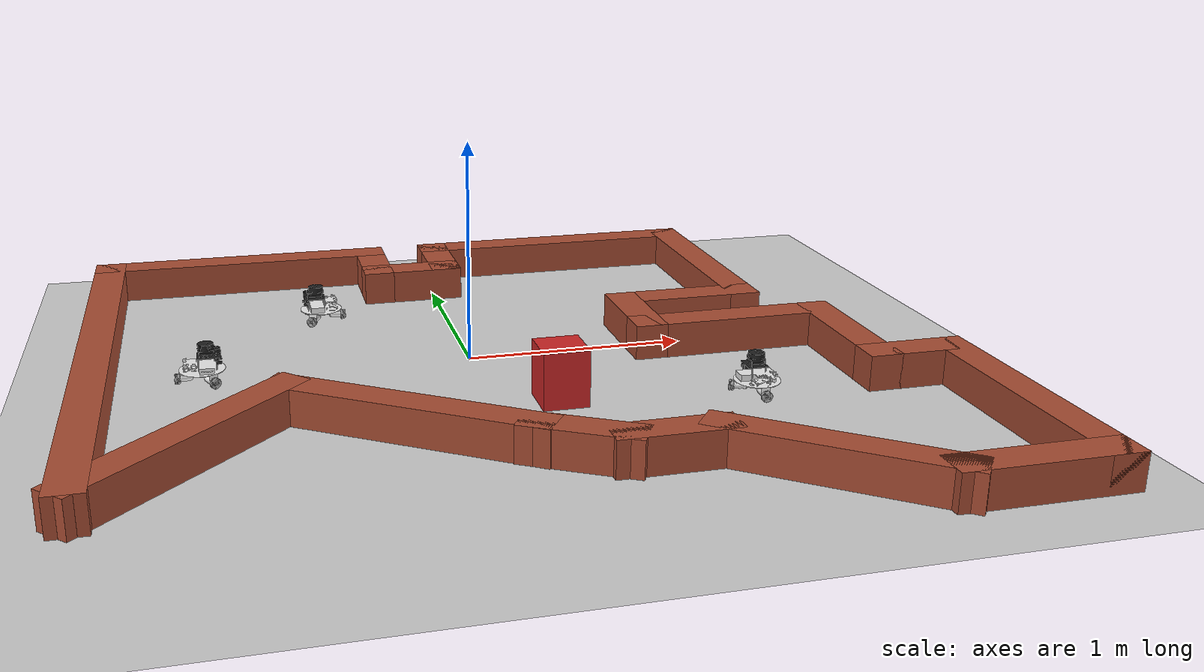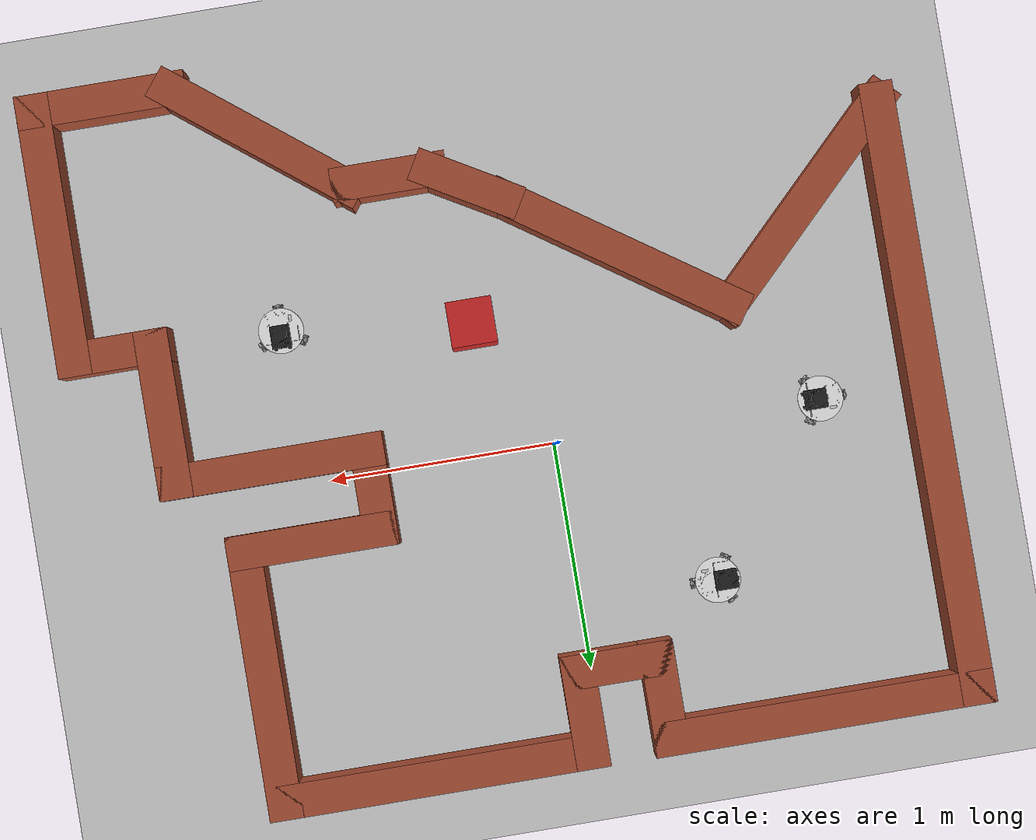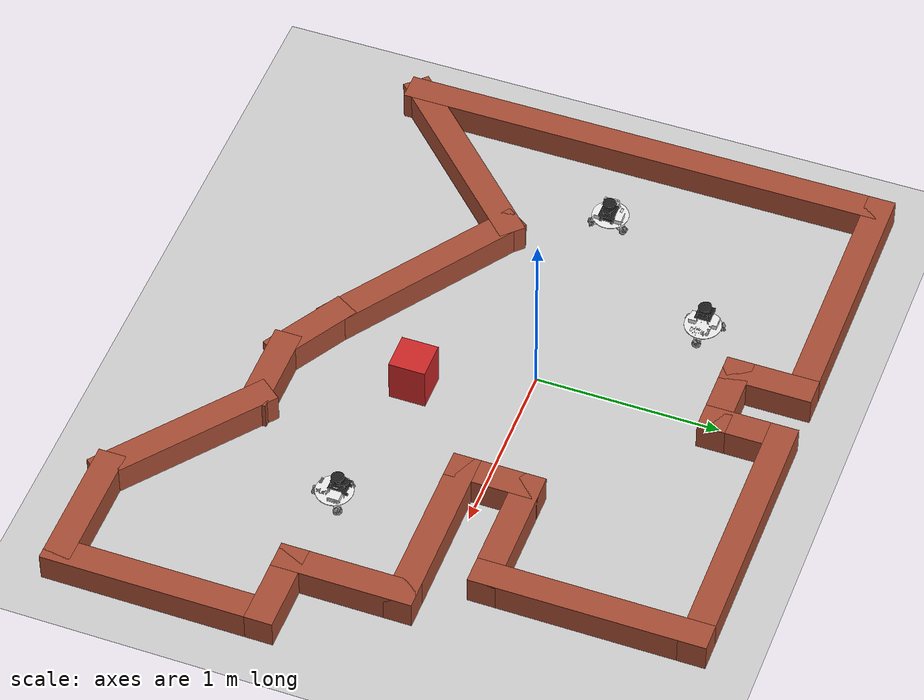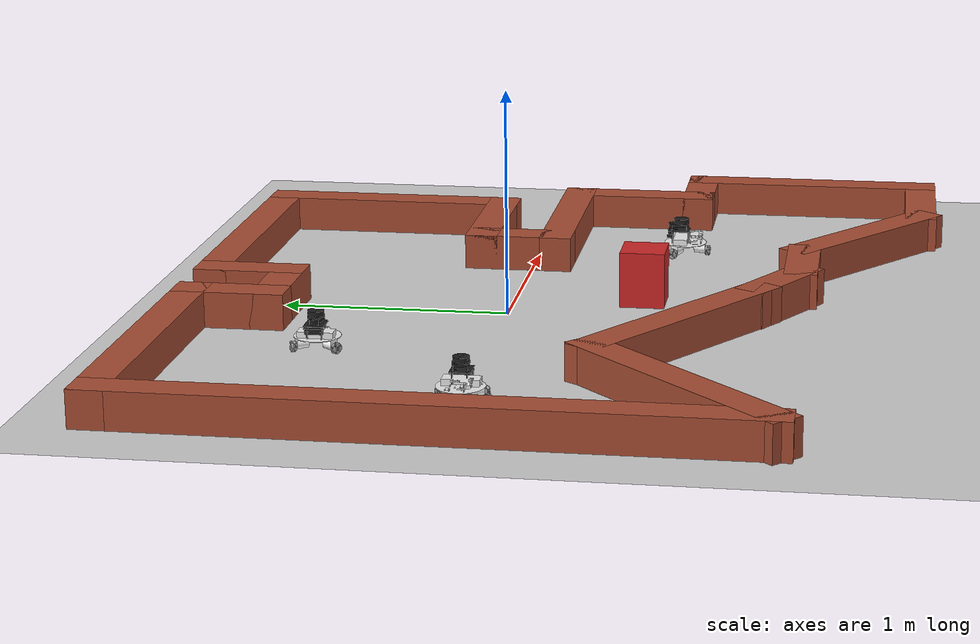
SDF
<sdf version="1.7">
 <world name="default">
  <light name="sun" type="directional">
   <pose>0 0 10 0 -0 0</pose>
   <diffuse>0.8 0.8 0.8 1</diffuse>
   <specular>0.2 0.2 0.2 1</specular>
   <attenuation>
    <range>1000</range>
    <constant>0.9</constant>
    <linear>0.01</linear>
    <quadratic>0.001</quadratic>
   </attenuation>
   <direction>-0.5 0.1 -0.9</direction>
   <spot><inner_angle>0</inner_angle><outer_angle>0</outer_angle><falloff>0</falloff></spot>
  </light>
  <model name="ground_plane">
   <static>1</static>
   <link name="link">
    <collision name="collision">
     <geometry><plane><normal>0 0 1</normal><size>100 100</size></plane></geometry>
     <surface>
      <contact><collide_bitmask>65535</collide_bitmask></contact>
      <friction><ode><mu>100</mu><mu2>50</mu2></ode></friction>
     </surface>
    </collision>
    <visual name="visual">
     <cast_shadows>0</cast_shadows>
     <geometry><plane><normal>0 0 1</normal><size>50 50</size></plane></geometry>
     <material>
      <script><uri>file://media/materials/scripts/gazebo.material</uri><name>Gazebo/Grey</name></script>
     </material>
    </visual>
   </link>
  </model>
  <gravity>0 0 -9.8</gravity>
  <magnetic_field>6e-06 2.3e-05 -4.2e-05</magnetic_field>
  <atmosphere type="adiabatic"/>
  <physics type="ode">
   <max_step_size>0.001</max_step_size>
   <real_time_factor>1</real_time_factor>
   <real_time_update_rate>1000</real_time_update_rate>
  </physics>
  <scene><ambient>0.4 0.4 0.4 1</ambient><background>0.7 0.7 0.7 1</background><shadows>1</shadows></scene>
  <spherical_coordinates>
   <surface_model>EARTH_WGS84</surface_model>
   <latitude_deg>0</latitude_deg>
   <longitude_deg>0</longitude_deg>
   <elevation>0</elevation>
   <heading_deg>0</heading_deg>
  </spherical_coordinates>
  <model name="box">
   <link name="link_1">
    <inertial>
     <mass>100</mass>
     <inertia>
      <ixx>0.166667</ixx>
      <ixy>0</ixy>
      <ixz>0</ixz>
      <iyy>0.166667</iyy>
      <iyz>0</iyz>
      <izz>0.166667</izz>
     </inertia>
    </inertial>
    <pose>0.1 -0.33 0.15 0 -0 0</pose>
    <visual name="visual">
     <geometry><box><size>0.2 0.2 0.25</size></box></geometry>
     <material>
      <lighting>1</lighting>
      <script><uri>file://media/materials/scripts/gazebo.material</uri><name>Gazebo/Red</name></script>
      <shader type="pixel"><normal_map>__default__</normal_map></shader>
      <ambient>0.3 0.3 0.3 1</ambient>
      <diffuse>1 0 0 1</diffuse>
      <specular>0.01 0.01 0.01 1</specular>
      <emissive>0 0 0 1</emissive>
     </material>
    </visual>
    <collision name="collision">
     <geometry><box><size>0.2 0.2 0.25</size></box></geometry>
     <surface>
      <friction>
       <ode><mu>1</mu><mu2>1</mu2><fdir1>0 0 0</fdir1><slip1>0</slip1><slip2>0</slip2></ode>
       <torsional>
        <coefficient>1</coefficient>
        <patch_radius>0</patch_radius>
        <surface_radius>0</surface_radius>
        <use_patch_radius>1</use_patch_radius>
        <ode><slip>0</slip></ode>
       </torsional>
      </friction>
      <bounce><restitution_coefficient>0</restitution_coefficient><threshold>1e+06</threshold></bounce>
      <contact>
       <collide_without_contact>0</collide_without_contact>
       <collide_without_contact_bitmask>1</collide_without_contact_bitmask>
       <collide_bitmask>1</collide_bitmask>
       <ode>
        <soft_cfm>0</soft_cfm>
        <soft_erp>0.2</soft_erp>
        <kp>1e+13</kp>
        <kd>1</kd>
        <max_vel>0.01</max_vel>
        <min_depth>0</min_depth>
       </ode>
       <bullet>
        <split_impulse>1</split_impulse>
        <split_impulse_penetration_threshold>-0.01</split_impulse_penetration_threshold>
        <soft_cfm>0</soft_cfm>
        <soft_erp>0.2</soft_erp>
        <kp>1e+13</kp>
        <kd>1</kd>
       </bullet>
      </contact>
     </surface>
    </collision>
   </link>
   <model name="MAP_WORLD">
    <link name="Wall_21">
     <collision name="Wall_21_Collision">
      <geometry><box><size>0.5 0.15 0.18</size></box></geometry>
      <pose>0 0 0.09 0 -0 0</pose>
     </collision>
     <visual name="Wall_21_Visual">
      <pose>0 0 0.09 0 -0 0</pose>
      <geometry><box><size>0.5 0.15 0.18</size></box></geometry>
      <material>
       <script><uri>file://media/materials/scripts/gazebo.material</uri><name>Gazebo/Bricks</name></script>
       <ambient>1 1 1 1</ambient>
      </material>
      <meta><layer>0</layer></meta>
     </visual>
     <pose>0.022087 -0.937359 0 0 -0 -0.523599</pose>
    </link>
    <link name="Wall_23">
     <collision name="Wall_23_Collision">
      <geometry><box><size>0.51 0.15 0.18</size></box></geometry>
      <pose>0 0 0.09 0 -0 0</pose>
     </collision>
     <visual name="Wall_23_Visual">
      <pose>0 0 0.09 0 -0 0</pose>
      <geometry><box><size>0.51 0.15 0.18</size></box></geometry>
      <material>
       <script><uri>file://media/materials/scripts/gazebo.material</uri><name>Gazebo/Bricks</name></script>
       <ambient>1 1 1 1</ambient>
      </material>
      <meta><layer>0</layer></meta>
     </visual>
     <pose>0.353642 -1.02486 0 0 -0 0</pose>
    </link>
    <link name="Wall_24">
     <collision name="Wall_24_Collision">
      <geometry><box><size>1.03469 0.15 0.18</size></box></geometry>
      <pose>0 0 0.09 0 -0 0</pose>
     </collision>
     <visual name="Wall_24_Visual">
      <pose>0 0 0.09 0 -0 0</pose>
      <geometry><box><size>1.03469 0.15 0.18</size></box></geometry>
      <material>
       <script><uri>file://media/materials/scripts/gazebo.material</uri><name>Gazebo/Bricks</name></script>
       <ambient>1 1 1 1</ambient>
      </material>
      <meta><layer>0</layer></meta>
     </visual>
     <pose>0.892087 -1.28736 0 0 -0 -0.663696</pose>
    </link>
    <link name="Wall_41">
     <collision name="Wall_41_Collision">
      <geometry><box><size>0.75 0.15 0.18</size></box></geometry>
      <pose>0 0 0.09 0 -0 0</pose>
     </collision>
     <visual name="Wall_41_Visual">
      <pose>0 0 0.09 0 -0 0</pose>
      <geometry><box><size>0.75 0.15 0.18</size></box></geometry>
      <material>
       <script><uri>file://media/materials/scripts/gazebo.material</uri><name>Gazebo/Bricks</name></script>
       <ambient>1 1 1 1</ambient>
      </material>
      <meta><layer>0</layer></meta>
     </visual>
     <pose>1.54053 -1.55986 0 0 -0 0</pose>
    </link>
    <link name="Wall_42">
     <collision name="Wall_42_Collision">
      <geometry><box><size>1.25 0.15 0.18</size></box></geometry>
      <pose>0 0 0.09 0 -0 0</pose>
     </collision>
     <visual name="Wall_42_Visual">
      <pose>0 0 0.09 0 -0 0</pose>
      <geometry><box><size>1.25 0.15 0.18</size></box></geometry>
      <material>
       <script><uri>file://media/materials/scripts/gazebo.material</uri><name>Gazebo/Bricks</name></script>
       <ambient>1 1 1 1</ambient>
      </material>
      <meta><layer>0</layer></meta>
     </visual>
     <pose>1.84053 -1.00986 0 0 -0 1.5708</pose>
    </link>
    <link name="Wall_43">
     <collision name="Wall_43_Collision">
      <geometry><box><size>0.5 0.15 0.18</size></box></geometry>
      <pose>0 0 0.09 0 -0 0</pose>
     </collision>
     <visual name="Wall_43_Visual">
      <pose>0 0 0.09 0 -0 0</pose>
      <geometry><box><size>0.5 0.15 0.18</size></box></geometry>
      <material>
       <script><uri>file://media/materials/scripts/gazebo.material</uri><name>Gazebo/Bricks</name></script>
       <ambient>1 1 1 1</ambient>
      </material>
      <meta><layer>0</layer></meta>
     </visual>
     <pose>1.66553 -0.459859 0 0 -0 3.14159</pose>
    </link>
    <link name="Wall_44">
     <collision name="Wall_44_Collision">
      <geometry><box><size>0.75 0.15 0.18</size></box></geometry>
      <pose>0 0 0.09 0 -0 0</pose>
     </collision>
     <visual name="Wall_44_Visual">
      <pose>0 0 0.09 0 -0 0</pose>
      <geometry><box><size>0.75 0.15 0.18</size></box></geometry>
      <material>
       <script><uri>file://media/materials/scripts/gazebo.material</uri><name>Gazebo/Bricks</name></script>
       <ambient>1 1 1 1</ambient>
      </material>
      <meta><layer>0</layer></meta>
     </visual>
     <pose>1.49053 -0.159859 0 0 -0 1.5708</pose>
    </link>
    <link name="Wall_45">
     <collision name="Wall_45_Collision">
      <geometry><box><size>1 0.15 0.18</size></box></geometry>
      <pose>0 0 0.09 0 -0 0</pose>
     </collision>
     <visual name="Wall_45_Visual">
      <pose>0 0 0.09 0 -0 0</pose>
      <geometry><box><size>1 0.15 0.18</size></box></geometry>
      <material>
       <script><uri>file://media/materials/scripts/gazebo.material</uri><name>Gazebo/Bricks</name></script>
       <ambient>1 1 1 1</ambient>
      </material>
      <meta><layer>0</layer></meta>
     </visual>
     <pose>1.06553 0.140141 0 0 -0 3.14159</pose>
    </link>
    <link name="Wall_58">
     <collision name="Wall_58_Collision">
      <geometry><box><size>0.5 0.15 0.18</size></box></geometry>
      <pose>0 0 0.09 0 -0 0</pose>
     </collision>
     <visual name="Wall_58_Visual">
      <pose>0 0 0.09 0 -0 0</pose>
      <geometry><box><size>0.5 0.15 0.18</size></box></geometry>
      <material>
       <script><uri>file://media/materials/scripts/gazebo.material</uri><name>Gazebo/Bricks</name></script>
       <ambient>1 1 1 1</ambient>
      </material>
      <meta><layer>0</layer></meta>
     </visual>
     <pose>0.640533 0.315141 0 0 -0 1.5708</pose>
    </link>
    <link name="Wall_62">
     <collision name="Wall_62_Collision">
      <geometry><box><size>0.75 0.15 0.18</size></box></geometry>
      <pose>0 0 0.09 0 -0 0</pose>
     </collision>
     <visual name="Wall_62_Visual">
      <pose>0 0 0.09 0 -0 0</pose>
      <geometry><box><size>0.75 0.15 0.18</size></box></geometry>
      <material>
       <script><uri>file://media/materials/scripts/gazebo.material</uri><name>Gazebo/Bricks</name></script>
       <ambient>1 1 1 1</ambient>
      </material>
      <meta><layer>0</layer></meta>
     </visual>
     <pose>0.940533 0.490141 0 0 -0 0</pose>
    </link>
    <link name="Wall_65">
     <collision name="Wall_65_Collision">
      <geometry><box><size>1.25 0.15 0.18</size></box></geometry>
      <pose>0 0 0.09 0 -0 0</pose>
     </collision>
     <visual name="Wall_65_Visual">
      <pose>0 0 0.09 0 -0 0</pose>
      <geometry><box><size>1.25 0.15 0.18</size></box></geometry>
      <material>
       <script><uri>file://media/materials/scripts/gazebo.material</uri><name>Gazebo/Bricks</name></script>
       <ambient>1 1 1 1</ambient>
      </material>
      <meta><layer>0</layer></meta>
     </visual>
     <pose>1.24053 1.04014 0 0 -0 1.5708</pose>
    </link>
    <link name="Wall_66">
     <collision name="Wall_66_Collision">
      <geometry><box><size>1.5 0.15 0.18</size></box></geometry>
      <pose>0 0 0.09 0 -0 0</pose>
     </collision>
     <visual name="Wall_66_Visual">
      <pose>0 0 0.09 0 -0 0</pose>
      <geometry><box><size>1.5 0.15 0.18</size></box></geometry>
      <material>
       <script><uri>file://media/materials/scripts/gazebo.material</uri><name>Gazebo/Bricks</name></script>
       <ambient>1 1 1 1</ambient>
      </material>
      <meta><layer>0</layer></meta>
     </visual>
     <pose>0.565533 1.59014 0 0 -0 3.14159</pose>
    </link>
    <link name="Wall_68">
     <collision name="Wall_68_Collision">
      <geometry><box><size>0.5 0.15 0.18</size></box></geometry>
      <pose>0 0 0.09 0 -0 0</pose>
     </collision>
     <visual name="Wall_68_Visual">
      <pose>0 0 0.09 0 -0 0</pose>
      <geometry><box><size>0.5 0.15 0.18</size></box></geometry>
      <material>
       <script><uri>file://media/materials/scripts/gazebo.material</uri><name>Gazebo/Bricks</name></script>
       <ambient>1 1 1 1</ambient>
      </material>
      <meta><layer>0</layer></meta>
     </visual>
     <pose>-0.109467 1.41514 0 0 -0 -1.5708</pose>
    </link>
    <link name="Wall_69">
     <collision name="Wall_69_Collision">
      <geometry><box><size>0.5 0.15 0.18</size></box></geometry>
      <pose>0 0 0.09 0 -0 0</pose>
     </collision>
     <visual name="Wall_69_Visual">
      <pose>0 0 0.09 0 -0 0</pose>
      <geometry><box><size>0.5 0.15 0.18</size></box></geometry>
      <material>
       <script><uri>file://media/materials/scripts/gazebo.material</uri><name>Gazebo/Bricks</name></script>
       <ambient>1 1 1 1</ambient>
      </material>
      <meta><layer>0</layer></meta>
     </visual>
     <pose>-0.284467 1.24014 0 0 -0 3.14159</pose>
    </link>
    <link name="Wall_70">
     <collision name="Wall_70_Collision">
      <geometry><box><size>0.5 0.15 0.18</size></box></geometry>
      <pose>0 0 0.09 0 -0 0</pose>
     </collision>
     <visual name="Wall_70_Visual">
      <pose>0 0 0.09 0 -0 0</pose>
      <geometry><box><size>0.5 0.15 0.18</size></box></geometry>
      <material>
       <script><uri>file://media/materials/scripts/gazebo.material</uri><name>Gazebo/Bricks</name></script>
       <ambient>1 1 1 1</ambient>
      </material>
      <meta><layer>0</layer></meta>
     </visual>
     <pose>-0.459467 1.41514 0 0 -0 1.5708</pose>
    </link>
    <link name="Wall_71">
     <collision name="Wall_71_Collision">
      <geometry><box><size>1.5 0.15 0.18</size></box></geometry>
      <pose>0 0 0.09 0 -0 0</pose>
     </collision>
     <visual name="Wall_71_Visual">
      <pose>0 0 0.09 0 -0 0</pose>
      <geometry><box><size>1.5 0.15 0.18</size></box></geometry>
      <material>
       <script><uri>file://media/materials/scripts/gazebo.material</uri><name>Gazebo/Bricks</name></script>
       <ambient>1 1 1 1</ambient>
      </material>
      <meta><layer>0</layer></meta>
     </visual>
     <pose>-1.13447 1.59014 0 0 -0 3.14159</pose>
    </link>
    <link name="Wall_72">
     <collision name="Wall_72_Collision">
      <geometry><box><size>2.75 0.15 0.18</size></box></geometry>
      <pose>0 0 0.09 0 -0 0</pose>
     </collision>
     <visual name="Wall_72_Visual">
      <pose>0 0 0.09 0 -0 0</pose>
      <geometry><box><size>2.75 0.15 0.18</size></box></geometry>
      <material>
       <script><uri>file://media/materials/scripts/gazebo.material</uri><name>Gazebo/Bricks</name></script>
       <ambient>1 1 1 1</ambient>
      </material>
      <meta><layer>0</layer></meta>
     </visual>
     <pose>-1.80947 0.290141 0 0 -0 -1.5708</pose>
    </link>
    <link name="Wall_73">
     <collision name="Wall_73_Collision">
      <geometry><box><size>1.25 0.15 0.18</size></box></geometry>
      <pose>0 0 0.09 0 -0 0</pose>
     </collision>
     <visual name="Wall_73_Visual">
      <pose>0 0 0.09 0 -0 0</pose>
      <geometry><box><size>1.25 0.15 0.18</size></box></geometry>
      <material>
       <script><uri>file://media/materials/scripts/gazebo.material</uri><name>Gazebo/Bricks</name></script>
       <ambient>1 1 1 1</ambient>
      </material>
      <meta><layer>0</layer></meta>
     </visual>
     <pose>-1.42056 -0.620951 0 0 -0 0.785398</pose>
    </link>
    <link name="Wall_74">
     <collision name="Wall_74_Collision">
      <geometry><box><size>1.24345 0.15 0.18</size></box></geometry>
      <pose>0 0 0.09 0 -0 0</pose>
     </collision>
     <visual name="Wall_74_Visual">
      <pose>0 0 0.09 0 -0 0</pose>
      <geometry><box><size>1.24345 0.15 0.18</size></box></geometry>
      <material>
       <script><uri>file://media/materials/scripts/gazebo.material</uri><name>Gazebo/Bricks</name></script>
       <ambient>1 1 1 1</ambient>
      </material>
      <meta><layer>0</layer></meta>
     </visual>
     <pose>-0.580558 -0.540951 0 0 -0 -0.600454</pose>
    </link>
    <static>1</static>
   </model>
   <static>0</static>
   <pose>0.17178 -0.24602 -0.024992 3.5e-05 -1e-06 0</pose>
  </model>
  <light name="user_point_light_0" type="point">
   <pose>-2.88095 2.26996 1 0 -0 0</pose>
   <diffuse>0.5 0.5 0.5 1</diffuse>
   <specular>0.1 0.1 0.1 1</specular>
   <attenuation>
    <range>20</range>
    <constant>0.5</constant>
    <linear>0.01</linear>
    <quadratic>0.001</quadratic>
   </attenuation>
   <cast_shadows>0</cast_shadows>
   <direction>0 0 -1</direction>
   <spot><inner_angle>0</inner_angle><outer_angle>0</outer_angle><falloff>0</falloff></spot>
  </light>
  <model name="ROBOT3">
   <link name="base_footprint">
    <inertial>
     <pose>0.01548 -0.006603 0.046836 0 -0 0</pose>
     <mass>62.0214</mass>
     <inertia>
      <ixx>100.232</ixx>
      <ixy>7.66226e-05</ixy>
      <ixz>-0.00620568</ixz>
      <iyy>100.224</iyy>
      <iyz>-0.000110931</iyz>
      <izz>100.375</izz>
     </inertia>
    </inertial>
    <collision name="base_footprint_fixed_joint_lump__base_link_collision">
     <geometry>
      <mesh>
       <scale>0.001 0.001 0.001</scale>
       <uri>/home/cps/catkin_ws/src/SwarmOmni/urdf_description/meshes/base_link.stl</uri>
      </mesh>
     </geometry>
     <surface><friction><ode><mu>0.2</mu><mu2>0.2</mu2></ode></friction></surface>
    </collision>
    <collision name="base_footprint_fixed_joint_lump__wheel_link_1_collision_1">
     <geometry>
      <mesh>
       <scale>0.001 0.001 0.001</scale>
       <uri>/home/cps/catkin_ws/src/SwarmOmni/urdf_description/meshes/wheel_link_1.stl</uri>
      </mesh>
     </geometry>
     <surface><friction><ode><mu>0.5</mu><mu2>0.5</mu2></ode></friction></surface>
    </collision>
    <collision name="base_footprint_fixed_joint_lump__wheel_link_2_collision_2">
     <geometry>
      <mesh>
       <scale>0.001 0.001 0.001</scale>
       <uri>/home/cps/catkin_ws/src/SwarmOmni/urdf_description/meshes/wheel_link_2.stl</uri>
      </mesh>
     </geometry>
     <surface><friction><ode><mu>0.5</mu><mu2>0.5</mu2></ode></friction></surface>
    </collision>
    <collision name="base_footprint_fixed_joint_lump__wheel_link_3_collision_3">
     <geometry>
      <mesh>
       <scale>0.001 0.001 0.001</scale>
       <uri>/home/cps/catkin_ws/src/SwarmOmni/urdf_description/meshes/wheel_link_3.stl</uri>
      </mesh>
     </geometry>
     <surface><friction><ode><mu>0.5</mu><mu2>0.5</mu2></ode></friction></surface>
    </collision>
    <collision name="base_footprint_fixed_joint_lump__lidar_link_collision_4">
     <geometry>
      <mesh>
       <scale>0.001 0.001 0.001</scale>
       <uri>/home/cps/catkin_ws/src/SwarmOmni/urdf_description/meshes/lidar_link_1.stl</uri>
      </mesh>
     </geometry>
     <surface><friction><ode><mu>0.2</mu><mu2>0.2</mu2></ode></friction></surface>
    </collision>
    <visual name="base_footprint_fixed_joint_lump__base_link_visual">
     <geometry>
      <mesh>
       <scale>0.001 0.001 0.001</scale>
       <uri>/home/cps/catkin_ws/src/SwarmOmni/urdf_description/meshes/base_link.stl</uri>
      </mesh>
     </geometry>
     <material>
      <script><name>Gazebo/White</name><uri>file://media/materials/scripts/gazebo.material</uri></script>
     </material>
    </visual>
    <visual name="base_footprint_fixed_joint_lump__wheel_link_1_visual_1">
     <geometry>
      <mesh>
       <scale>0.001 0.001 0.001</scale>
       <uri>/home/cps/catkin_ws/src/SwarmOmni/urdf_description/meshes/wheel_link_1.stl</uri>
      </mesh>
     </geometry>
     <material>
      <script><name>Gazebo/Gray</name><uri>file://media/materials/scripts/gazebo.material</uri></script>
     </material>
    </visual>
    <visual name="base_footprint_fixed_joint_lump__wheel_link_2_visual_2">
     <geometry>
      <mesh>
       <scale>0.001 0.001 0.001</scale>
       <uri>/home/cps/catkin_ws/src/SwarmOmni/urdf_description/meshes/wheel_link_2.stl</uri>
      </mesh>
     </geometry>
     <material>
      <script><name>Gazebo/Gray</name><uri>file://media/materials/scripts/gazebo.material</uri></script>
     </material>
    </visual>
    <visual name="base_footprint_fixed_joint_lump__wheel_link_3_visual_3">
     <geometry>
      <mesh>
       <scale>0.001 0.001 0.001</scale>
       <uri>/home/cps/catkin_ws/src/SwarmOmni/urdf_description/meshes/wheel_link_3.stl</uri>
      </mesh>
     </geometry>
     <material>
      <script><name>Gazebo/Gray</name><uri>file://media/materials/scripts/gazebo.material</uri></script>
     </material>
    </visual>
    <visual name="base_footprint_fixed_joint_lump__lidar_link_visual_4">
     <geometry>
      <mesh>
       <scale>0.001 0.001 0.001</scale>
       <uri>/home/cps/catkin_ws/src/SwarmOmni/urdf_description/meshes/lidar_link_1.stl</uri>
      </mesh>
     </geometry>
     <material>
      <script><name>Gazebo/Black</name><uri>file://media/materials/scripts/gazebo.material</uri></script>
     </material>
    </visual>
    <self_collide>1</self_collide>
    <sensor name="lds_lfcd_sensor" type="ray">
     <visualize>0</visualize>
     <update_rate>30</update_rate>
     <ray>
      <scan>
       <horizontal>
        <samples>360</samples>
        <resolution>1</resolution>
        <min_angle>-3.14159</min_angle>
        <max_angle>3.14159</max_angle>
       </horizontal>
       <vertical><samples>1</samples><min_angle>0</min_angle><max_angle>0</max_angle></vertical>
      </scan>
      <range><min>0.12</min><max>10</max><resolution>0.01</resolution></range>
      <noise><type>gaussian</type><mean>0</mean><stddev>0.01</stddev></noise>
     </ray>
     <plugin name="gazebo_ros_lds_lfcd_controller" filename="libgazebo_ros_laser.so">
      <topicName>scan</topicName>
      <frameName>laser</frameName>
      <robotNamespace>/robot3/</robotNamespace>
     </plugin>
     <pose>0.03 0 0.156 0 -0 0</pose>
    </sensor>
   </link>
   <static>0</static>
   <plugin name="object_controller" filename="libgazebo_ros_planar_move.so">
    <commandTopic>cmd_vel</commandTopic>
    <odometryTopic>odom</odometryTopic>
    <odometryFrame>odom</odometryFrame>
    <odometryRate>30</odometryRate>
    <robotBaseFrame>base_footprint</robotBaseFrame>
    <robotNamespace>/robot3/</robotNamespace>
   </plugin>
   <pose>-0.6 0.7 -0.000286 7.7e-05 0.000279 3.14</pose>
  </model>
  <model name="ROBOT2">
   <link name="base_footprint">
    <inertial>
     <pose>0.01548 -0.006603 0.046836 0 -0 0</pose>
     <mass>62.0214</mass>
     <inertia>
      <ixx>100.232</ixx>
      <ixy>7.66226e-05</ixy>
      <ixz>-0.00620568</ixz>
      <iyy>100.224</iyy>
      <iyz>-0.000110931</iyz>
      <izz>100.375</izz>
     </inertia>
    </inertial>
    <collision name="base_footprint_fixed_joint_lump__base_link_collision">
     <geometry>
      <mesh>
       <scale>0.001 0.001 0.001</scale>
       <uri>/home/cps/catkin_ws/src/SwarmOmni/urdf_description/meshes/base_link.stl</uri>
      </mesh>
     </geometry>
     <surface><friction><ode><mu>0.2</mu><mu2>0.2</mu2></ode></friction></surface>
    </collision>
    <collision name="base_footprint_fixed_joint_lump__wheel_link_1_collision_1">
     <geometry>
      <mesh>
       <scale>0.001 0.001 0.001</scale>
       <uri>/home/cps/catkin_ws/src/SwarmOmni/urdf_description/meshes/wheel_link_1.stl</uri>
      </mesh>
     </geometry>
     <surface><friction><ode><mu>0.5</mu><mu2>0.5</mu2></ode></friction></surface>
    </collision>
    <collision name="base_footprint_fixed_joint_lump__wheel_link_2_collision_2">
     <geometry>
      <mesh>
       <scale>0.001 0.001 0.001</scale>
       <uri>/home/cps/catkin_ws/src/SwarmOmni/urdf_description/meshes/wheel_link_2.stl</uri>
      </mesh>
     </geometry>
     <surface><friction><ode><mu>0.5</mu><mu2>0.5</mu2></ode></friction></surface>
    </collision>
    <collision name="base_footprint_fixed_joint_lump__wheel_link_3_collision_3">
     <geometry>
      <mesh>
       <scale>0.001 0.001 0.001</scale>
       <uri>/home/cps/catkin_ws/src/SwarmOmni/urdf_description/meshes/wheel_link_3.stl</uri>
      </mesh>
     </geometry>
     <surface><friction><ode><mu>0.5</mu><mu2>0.5</mu2></ode></friction></surface>
    </collision>
    <collision name="base_footprint_fixed_joint_lump__lidar_link_collision_4">
     <geometry>
      <mesh>
       <scale>0.001 0.001 0.001</scale>
       <uri>/home/cps/catkin_ws/src/SwarmOmni/urdf_description/meshes/lidar_link_1.stl</uri>
      </mesh>
     </geometry>
     <surface><friction><ode><mu>0.2</mu><mu2>0.2</mu2></ode></friction></surface>
    </collision>
    <visual name="base_footprint_fixed_joint_lump__base_link_visual">
     <geometry>
      <mesh>
       <scale>0.001 0.001 0.001</scale>
       <uri>/home/cps/catkin_ws/src/SwarmOmni/urdf_description/meshes/base_link.stl</uri>
      </mesh>
     </geometry>
     <material>
      <script><name>Gazebo/White</name><uri>file://media/materials/scripts/gazebo.material</uri></script>
     </material>
    </visual>
    <visual name="base_footprint_fixed_joint_lump__wheel_link_1_visual_1">
     <geometry>
      <mesh>
       <scale>0.001 0.001 0.001</scale>
       <uri>/home/cps/catkin_ws/src/SwarmOmni/urdf_description/meshes/wheel_link_1.stl</uri>
      </mesh>
     </geometry>
     <material>
      <script><name>Gazebo/Gray</name><uri>file://media/materials/scripts/gazebo.material</uri></script>
     </material>
    </visual>
    <visual name="base_footprint_fixed_joint_lump__wheel_link_2_visual_2">
     <geometry>
      <mesh>
       <scale>0.001 0.001 0.001</scale>
       <uri>/home/cps/catkin_ws/src/SwarmOmni/urdf_description/meshes/wheel_link_2.stl</uri>
      </mesh>
     </geometry>
     <material>
      <script><name>Gazebo/Gray</name><uri>file://media/materials/scripts/gazebo.material</uri></script>
     </material>
    </visual>
    <visual name="base_footprint_fixed_joint_lump__wheel_link_3_visual_3">
     <geometry>
      <mesh>
       <scale>0.001 0.001 0.001</scale>
       <uri>/home/cps/catkin_ws/src/SwarmOmni/urdf_description/meshes/wheel_link_3.stl</uri>
      </mesh>
     </geometry>
     <material>
      <script><name>Gazebo/Gray</name><uri>file://media/materials/scripts/gazebo.material</uri></script>
     </material>
    </visual>
    <visual name="base_footprint_fixed_joint_lump__lidar_link_visual_4">
     <geometry>
      <mesh>
       <scale>0.001 0.001 0.001</scale>
       <uri>/home/cps/catkin_ws/src/SwarmOmni/urdf_description/meshes/lidar_link_1.stl</uri>
      </mesh>
     </geometry>
     <material>
      <script><name>Gazebo/Black</name><uri>file://media/materials/scripts/gazebo.material</uri></script>
     </material>
    </visual>
    <self_collide>1</self_collide>
    <sensor name="lds_lfcd_sensor" type="ray">
     <visualize>0</visualize>
     <update_rate>30</update_rate>
     <ray>
      <scan>
       <horizontal>
        <samples>360</samples>
        <resolution>1</resolution>
        <min_angle>-3.14159</min_angle>
        <max_angle>3.14159</max_angle>
       </horizontal>
       <vertical><samples>1</samples><min_angle>0</min_angle><max_angle>0</max_angle></vertical>
      </scan>
      <range><min>0.12</min><max>10</max><resolution>0.01</resolution></range>
      <noise><type>gaussian</type><mean>0</mean><stddev>0.01</stddev></noise>
     </ray>
     <plugin name="gazebo_ros_lds_lfcd_controller" filename="libgazebo_ros_laser.so">
      <topicName>scan</topicName>
      <frameName>laser</frameName>
      <robotNamespace>/robot2/</robotNamespace>
     </plugin>
     <pose>0.03 0 0.156 0 -0 0</pose>
    </sensor>
   </link>
   <static>0</static>
   <plugin name="object_controller" filename="libgazebo_ros_planar_move.so">
    <commandTopic>cmd_vel</commandTopic>
    <odometryTopic>odom</odometryTopic>
    <odometryFrame>odom</odometryFrame>
    <odometryRate>30</odometryRate>
    <robotBaseFrame>base_footprint</robotBaseFrame>
    <robotNamespace>/robot2/</robotNamespace>
   </plugin>
   <pose>-1.2 0 -0.000276 7.7e-05 0.000279 1e-06</pose>
  </model>
  <model name="ROBOT1">
   <link name="base_footprint">
    <inertial>
     <pose>0.01548 -0.006603 0.046836 0 -0 0</pose>
     <mass>62.0214</mass>
     <inertia>
      <ixx>100.232</ixx>
      <ixy>7.66226e-05</ixy>
      <ixz>-0.00620568</ixz>
      <iyy>100.224</iyy>
      <iyz>-0.000110931</iyz>
      <izz>100.375</izz>
     </inertia>
    </inertial>
    <collision name="base_footprint_fixed_joint_lump__base_link_collision">
     <geometry>
      <mesh>
       <scale>0.001 0.001 0.001</scale>
       <uri>/home/cps/catkin_ws/src/SwarmOmni/urdf_description/meshes/base_link.stl</uri>
      </mesh>
     </geometry>
     <surface><friction><ode><mu>0.2</mu><mu2>0.2</mu2></ode></friction></surface>
    </collision>
    <collision name="base_footprint_fixed_joint_lump__wheel_link_1_collision_1">
     <geometry>
      <mesh>
       <scale>0.001 0.001 0.001</scale>
       <uri>/home/cps/catkin_ws/src/SwarmOmni/urdf_description/meshes/wheel_link_1.stl</uri>
      </mesh>
     </geometry>
     <surface><friction><ode><mu>0.5</mu><mu2>0.5</mu2></ode></friction></surface>
    </collision>
    <collision name="base_footprint_fixed_joint_lump__wheel_link_2_collision_2">
     <geometry>
      <mesh>
       <scale>0.001 0.001 0.001</scale>
       <uri>/home/cps/catkin_ws/src/SwarmOmni/urdf_description/meshes/wheel_link_2.stl</uri>
      </mesh>
     </geometry>
     <surface><friction><ode><mu>0.5</mu><mu2>0.5</mu2></ode></friction></surface>
    </collision>
    <collision name="base_footprint_fixed_joint_lump__wheel_link_3_collision_3">
     <geometry>
      <mesh>
       <scale>0.001 0.001 0.001</scale>
       <uri>/home/cps/catkin_ws/src/SwarmOmni/urdf_description/meshes/wheel_link_3.stl</uri>
      </mesh>
     </geometry>
     <surface><friction><ode><mu>0.5</mu><mu2>0.5</mu2></ode></friction></surface>
    </collision>
    <collision name="base_footprint_fixed_joint_lump__lidar_link_collision_4">
     <geometry>
      <mesh>
       <scale>0.001 0.001 0.001</scale>
       <uri>/home/cps/catkin_ws/src/SwarmOmni/urdf_description/meshes/lidar_link_1.stl</uri>
      </mesh>
     </geometry>
     <surface><friction><ode><mu>0.2</mu><mu2>0.2</mu2></ode></friction></surface>
    </collision>
    <visual name="base_footprint_fixed_joint_lump__base_link_visual">
     <geometry>
      <mesh>
       <scale>0.001 0.001 0.001</scale>
       <uri>/home/cps/catkin_ws/src/SwarmOmni/urdf_description/meshes/base_link.stl</uri>
      </mesh>
     </geometry>
     <material>
      <script><name>Gazebo/White</name><uri>file://media/materials/scripts/gazebo.material</uri></script>
     </material>
    </visual>
    <visual name="base_footprint_fixed_joint_lump__wheel_link_1_visual_1">
     <geometry>
      <mesh>
       <scale>0.001 0.001 0.001</scale>
       <uri>/home/cps/catkin_ws/src/SwarmOmni/urdf_description/meshes/wheel_link_1.stl</uri>
      </mesh>
     </geometry>
     <material>
      <script><name>Gazebo/Gray</name><uri>file://media/materials/scripts/gazebo.material</uri></script>
     </material>
    </visual>
    <visual name="base_footprint_fixed_joint_lump__wheel_link_2_visual_2">
     <geometry>
      <mesh>
       <scale>0.001 0.001 0.001</scale>
       <uri>/home/cps/catkin_ws/src/SwarmOmni/urdf_description/meshes/wheel_link_2.stl</uri>
      </mesh>
     </geometry>
     <material>
      <script><name>Gazebo/Gray</name><uri>file://media/materials/scripts/gazebo.material</uri></script>
     </material>
    </visual>
    <visual name="base_footprint_fixed_joint_lump__wheel_link_3_visual_3">
     <geometry>
      <mesh>
       <scale>0.001 0.001 0.001</scale>
       <uri>/home/cps/catkin_ws/src/SwarmOmni/urdf_description/meshes/wheel_link_3.stl</uri>
      </mesh>
     </geometry>
     <material>
      <script><name>Gazebo/Gray</name><uri>file://media/materials/scripts/gazebo.material</uri></script>
     </material>
    </visual>
    <visual name="base_footprint_fixed_joint_lump__lidar_link_visual_4">
     <geometry>
      <mesh>
       <scale>0.001 0.001 0.001</scale>
       <uri>/home/cps/catkin_ws/src/SwarmOmni/urdf_description/meshes/lidar_link_1.stl</uri>
      </mesh>
     </geometry>
     <material>
      <script><name>Gazebo/Black</name><uri>file://media/materials/scripts/gazebo.material</uri></script>
     </material>
    </visual>
    <self_collide>1</self_collide>
    <sensor name="lds_lfcd_sensor" type="ray">
     <visualize>0</visualize>
     <update_rate>30</update_rate>
     <ray>
      <scan>
       <horizontal>
        <samples>360</samples>
        <resolution>1</resolution>
        <min_angle>-3.14159</min_angle>
        <max_angle>3.14159</max_angle>
       </horizontal>
       <vertical><samples>1</samples><min_angle>0</min_angle><max_angle>0</max_angle></vertical>
      </scan>
      <range><min>0.12</min><max>10</max><resolution>0.01</resolution></range>
      <noise><type>gaussian</type><mean>0</mean><stddev>0.01</stddev></noise>
     </ray>
     <plugin name="gazebo_ros_lds_lfcd_controller" filename="libgazebo_ros_laser.so">
      <topicName>scan</topicName>
      <frameName>laser</frameName>
      <robotNamespace>/robot1/</robotNamespace>
     </plugin>
     <pose>0.03 0 0.156 0 -0 0</pose>
    </sensor>
   </link>
   <static>0</static>
   <plugin name="object_controller" filename="libgazebo_ros_planar_move.so">
    <commandTopic>cmd_vel</commandTopic>
    <odometryTopic>odom</odometryTopic>
    <odometryFrame>odom</odometryFrame>
    <odometryRate>30</odometryRate>
    <robotBaseFrame>base_footprint</robotBaseFrame>
    <robotNamespace>/robot1/</robotNamespace>
   </plugin>
   <pose>1.1 -0.7 -0.000276 7.7e-05 0.000279 1.57</pose>
  </model>
 </world>
</sdf>
